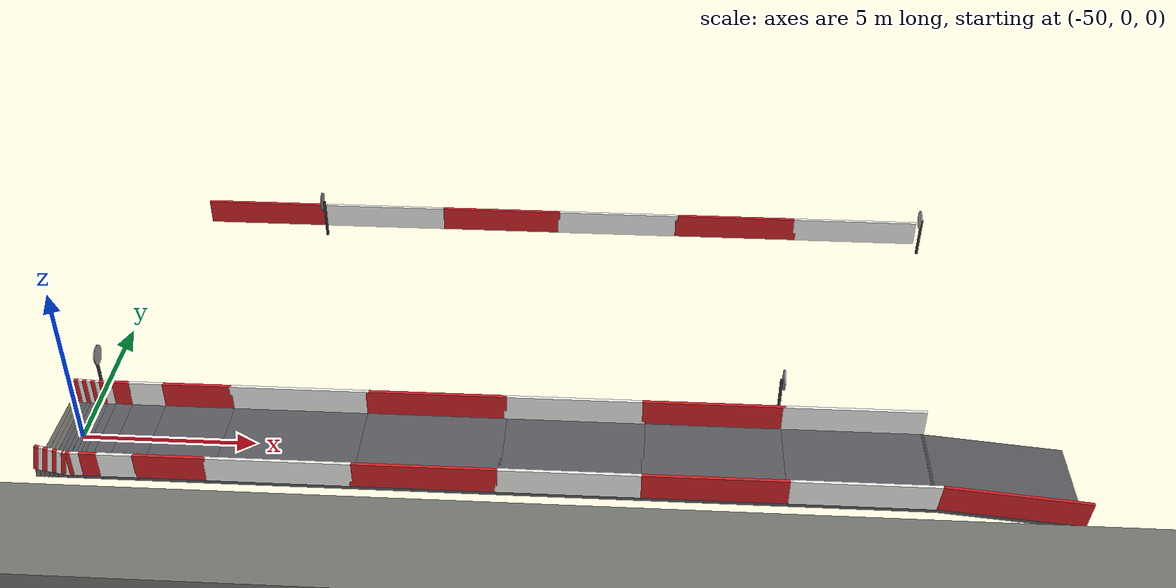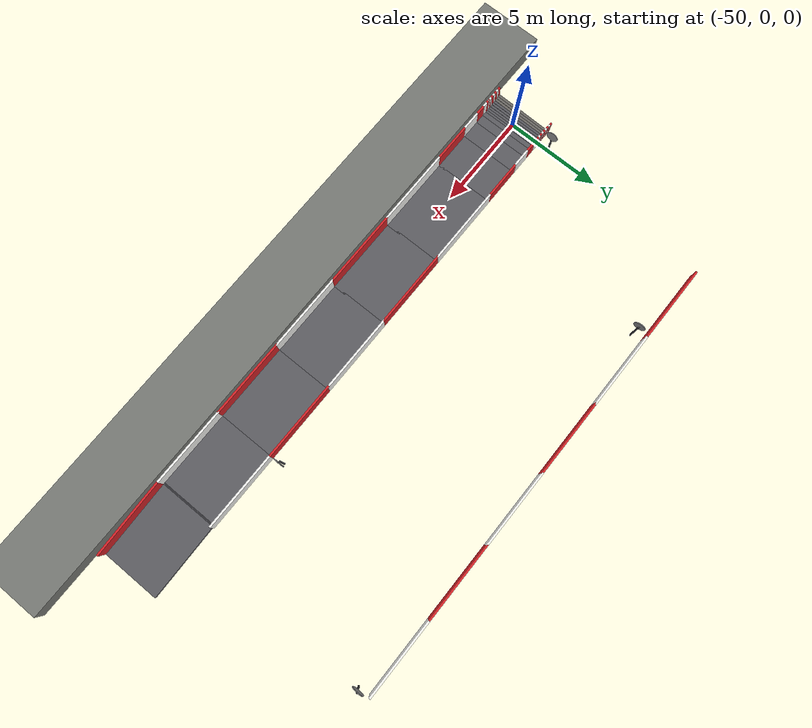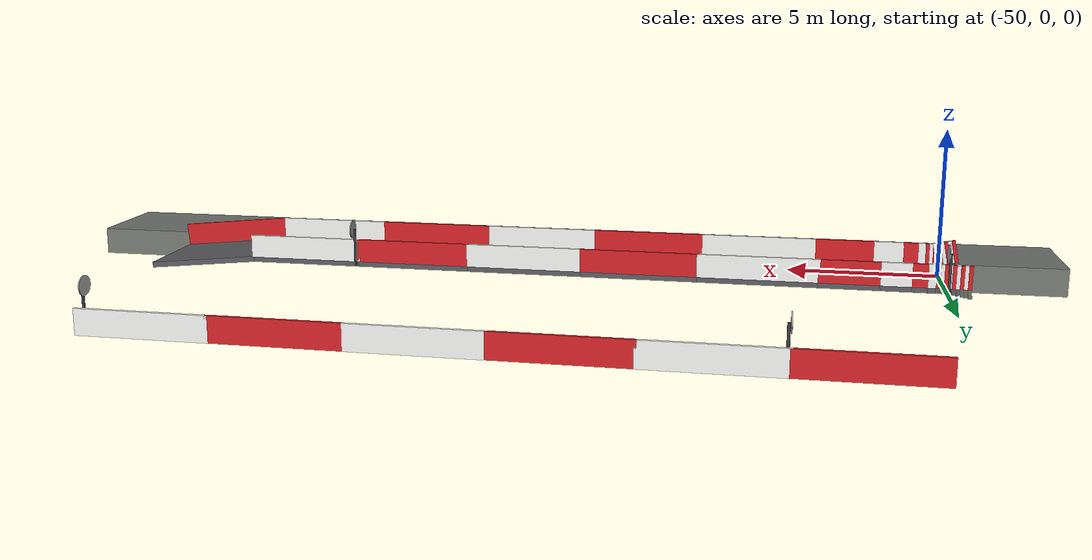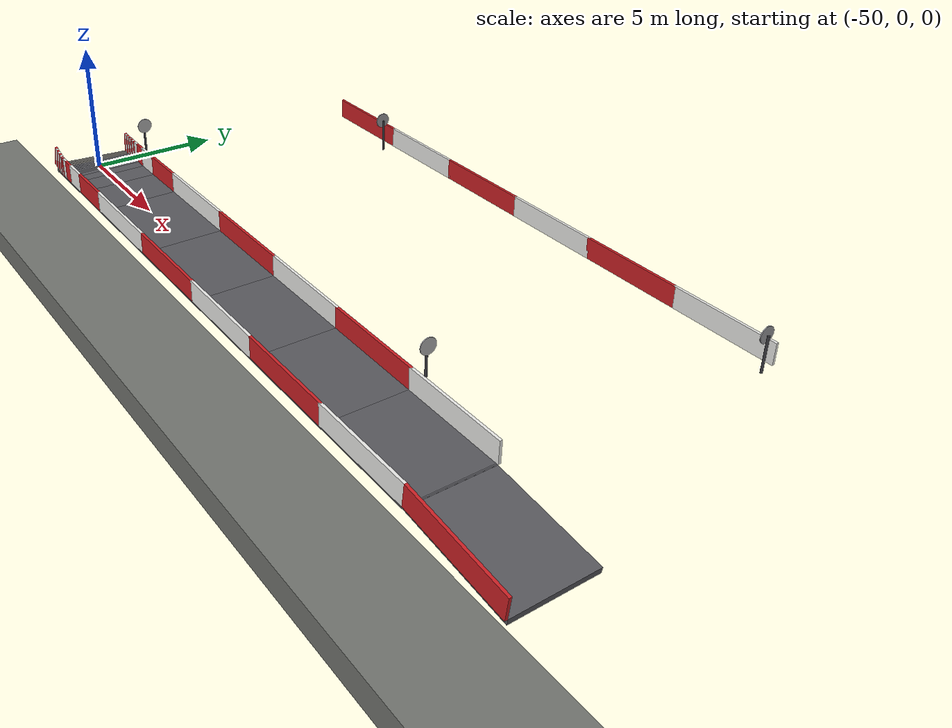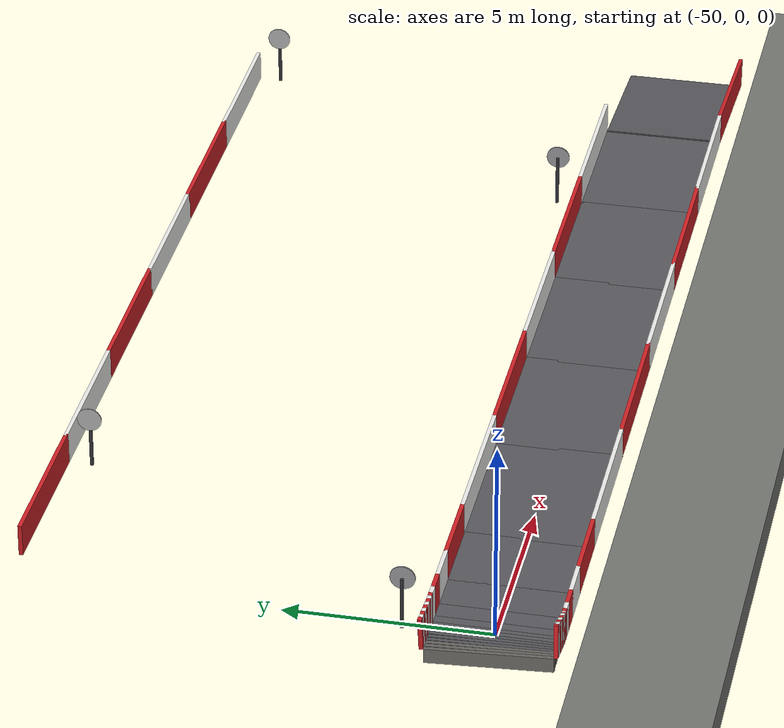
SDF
<sdf version="1.10">
 <world name="ika_parkur">
  <model name="ground_south">
   <static>true</static>
   <pose>-35 -9.285 -0.52 0 0 0</pose>
   <link name="ground_south_link">
    <collision name="ground_south_link_collision">
     <geometry><box><size>116.199336 14.63 1</size></box></geometry>
     <surface>
      <friction><ode><mu>1</mu><mu2>1</mu2></ode></friction>
      <contact><ode><kp>1000000</kp><kd>1</kd></ode></contact>
     </surface>
    </collision>
    <visual name="ground_south_link_visual">
     <geometry><box><size>116.199336 14.63 1</size></box></geometry>
     <material>
      <ambient>0.45 0.46 0.44 1</ambient>
      <diffuse>0.45 0.46 0.44 1</diffuse>
      <specular>0.1 0.1 0.1 1</specular>
     </material>
    </visual>
   </link>
  </model>
  <model name="parkur_road">
   <static>true</static>
   <link name="road_0006">
    <pose>-24.00995 0 -0.299504 0 -0.099669 3.141593</pose>
    <collision name="road_0006_col">
     <geometry><box><size>4.100349 3 0.2</size></box></geometry>
     <surface>
      <friction><ode><mu>1</mu><mu2>1</mu2></ode></friction>
      <contact><ode><kp>1000000</kp><kd>1</kd></ode></contact>
     </surface>
    </collision>
    <visual name="road_0006_vis">
     <geometry><box><size>4.100349 3 0.2</size></box></geometry>
     <material>
      <ambient>0.35 0.35 0.37 1</ambient>
      <diffuse>0.35 0.35 0.37 1</diffuse>
      <specular>0.1 0.1 0.1 1</specular>
     </material>
    </visual>
   </link>
   <link name="road_0007">
    <pose>-28 0 -0.1 0 0 3.141593</pose>
    <collision name="road_0007_col">
     <geometry><box><size>4.08 3 0.2</size></box></geometry>
     <surface>
      <friction><ode><mu>1</mu><mu2>1</mu2></ode></friction>
      <contact><ode><kp>1000000</kp><kd>1</kd></ode></contact>
     </surface>
    </collision>
    <visual name="road_0007_vis">
     <geometry><box><size>4.08 3 0.2</size></box></geometry>
     <material>
      <ambient>0.35 0.35 0.37 1</ambient>
      <diffuse>0.35 0.35 0.37 1</diffuse>
      <specular>0.1 0.1 0.1 1</specular>
     </material>
    </visual>
   </link>
   <link name="road_0008">
    <pose>-32 0 -0.1 0 0 3.141593</pose>
    <collision name="road_0008_col">
     <geometry><box><size>4.08 3 0.2</size></box></geometry>
     <surface>
      <friction><ode><mu>1</mu><mu2>1</mu2></ode></friction>
      <contact><ode><kp>1000000</kp><kd>1</kd></ode></contact>
     </surface>
    </collision>
    <visual name="road_0008_vis">
     <geometry><box><size>4.08 3 0.2</size></box></geometry>
     <material>
      <ambient>0.35 0.35 0.37 1</ambient>
      <diffuse>0.35 0.35 0.37 1</diffuse>
      <specular>0.1 0.1 0.1 1</specular>
     </material>
    </visual>
   </link>
   <link name="road_0009">
    <pose>-36 0 -0.1 0 0 3.141593</pose>
    <collision name="road_0009_col">
     <geometry><box><size>4.08 3 0.2</size></box></geometry>
     <surface>
      <friction><ode><mu>1</mu><mu2>1</mu2></ode></friction>
      <contact><ode><kp>1000000</kp><kd>1</kd></ode></contact>
     </surface>
    </collision>
    <visual name="road_0009_vis">
     <geometry><box><size>4.08 3 0.2</size></box></geometry>
     <material>
      <ambient>0.35 0.35 0.37 1</ambient>
      <diffuse>0.35 0.35 0.37 1</diffuse>
      <specular>0.1 0.1 0.1 1</specular>
     </material>
    </visual>
   </link>
   <link name="road_0010">
    <pose>-40 0 -0.1 0 0 3.141593</pose>
    <collision name="road_0010_col">
     <geometry><box><size>4.08 3 0.2</size></box></geometry>
     <surface>
      <friction><ode><mu>1</mu><mu2>1</mu2></ode></friction>
      <contact><ode><kp>1000000</kp><kd>1</kd></ode></contact>
     </surface>
    </collision>
    <visual name="road_0010_vis">
     <geometry><box><size>4.08 3 0.2</size></box></geometry>
     <material>
      <ambient>0.35 0.35 0.37 1</ambient>
      <diffuse>0.35 0.35 0.37 1</diffuse>
      <specular>0.1 0.1 0.1 1</specular>
     </material>
    </visual>
   </link>
   <link name="road_0011">
    <pose>-44 0 -0.1 0 0 3.141593</pose>
    <collision name="road_0011_col">
     <geometry><box><size>4.08 3 0.2</size></box></geometry>
     <surface>
      <friction><ode><mu>1</mu><mu2>1</mu2></ode></friction>
      <contact><ode><kp>1000000</kp><kd>1</kd></ode></contact>
     </surface>
    </collision>
    <visual name="road_0011_vis">
     <geometry><box><size>4.08 3 0.2</size></box></geometry>
     <material>
      <ambient>0.35 0.35 0.37 1</ambient>
      <diffuse>0.35 0.35 0.37 1</diffuse>
      <specular>0.1 0.1 0.1 1</specular>
     </material>
    </visual>
   </link>
   <link name="road_0012">
    <pose>-47 0 -0.1 0 0 3.141593</pose>
    <collision name="road_0012_col">
     <geometry><box><size>2.04 3 0.2</size></box></geometry>
     <surface>
      <friction><ode><mu>1</mu><mu2>1</mu2></ode></friction>
      <contact><ode><kp>1000000</kp><kd>1</kd></ode></contact>
     </surface>
    </collision>
    <visual name="road_0012_vis">
     <geometry><box><size>2.04 3 0.2</size></box></geometry>
     <material>
      <ambient>0.35 0.35 0.37 1</ambient>
      <diffuse>0.35 0.35 0.37 1</diffuse>
      <specular>0.1 0.1 0.1 1</specular>
     </material>
    </visual>
   </link>
   <link name="road_0013">
    <pose>-48.5 0 -0.1 0 0 3.141593</pose>
    <collision name="road_0013_col">
     <geometry><box><size>1.02 3 0.2</size></box></geometry>
     <surface>
      <friction><ode><mu>1</mu><mu2>1</mu2></ode></friction>
      <contact><ode><kp>1000000</kp><kd>1</kd></ode></contact>
     </surface>
    </collision>
    <visual name="road_0013_vis">
     <geometry><box><size>1.02 3 0.2</size></box></geometry>
     <material>
      <ambient>0.35 0.35 0.37 1</ambient>
      <diffuse>0.35 0.35 0.37 1</diffuse>
      <specular>0.1 0.1 0.1 1</specular>
     </material>
    </visual>
   </link>
   <link name="road_0014">
    <pose>-49.25 0 -0.1 0 0 3.141593</pose>
    <collision name="road_0014_col">
     <geometry><box><size>0.51 3 0.2</size></box></geometry>
     <surface>
      <friction><ode><mu>1</mu><mu2>1</mu2></ode></friction>
      <contact><ode><kp>1000000</kp><kd>1</kd></ode></contact>
     </surface>
    </collision>
    <visual name="road_0014_vis">
     <geometry><box><size>0.51 3 0.2</size></box></geometry>
     <material>
      <ambient>0.35 0.35 0.37 1</ambient>
      <diffuse>0.35 0.35 0.37 1</diffuse>
      <specular>0.1 0.1 0.1 1</specular>
     </material>
    </visual>
   </link>
   <link name="road_0015">
    <pose>-49.625 0 -0.1 0 0 3.141593</pose>
    <collision name="road_0015_col">
     <geometry><box><size>0.255 3 0.2</size></box></geometry>
     <surface>
      <friction><ode><mu>1</mu><mu2>1</mu2></ode></friction>
      <contact><ode><kp>1000000</kp><kd>1</kd></ode></contact>
     </surface>
    </collision>
    <visual name="road_0015_vis">
     <geometry><box><size>0.255 3 0.2</size></box></geometry>
     <material>
      <ambient>0.35 0.35 0.37 1</ambient>
      <diffuse>0.35 0.35 0.37 1</diffuse>
      <specular>0.1 0.1 0.1 1</specular>
     </material>
    </visual>
   </link>
   <link name="road_0016">
    <pose>-49.8125 0 -0.1 0 0 3.141593</pose>
    <collision name="road_0016_col">
     <geometry><box><size>0.1275 3 0.2</size></box></geometry>
     <surface>
      <friction><ode><mu>1</mu><mu2>1</mu2></ode></friction>
      <contact><ode><kp>1000000</kp><kd>1</kd></ode></contact>
     </surface>
    </collision>
    <visual name="road_0016_vis">
     <geometry><box><size>0.1275 3 0.2</size></box></geometry>
     <material>
      <ambient>0.35 0.35 0.37 1</ambient>
      <diffuse>0.35 0.35 0.37 1</diffuse>
      <specular>0.1 0.1 0.1 1</specular>
     </material>
    </visual>
   </link>
   <link name="road_0017">
    <pose>-49.9375 0 -0.1 0 0 3.141593</pose>
    <collision name="road_0017_col">
     <geometry><box><size>0.1275 3 0.2</size></box></geometry>
     <surface>
      <friction><ode><mu>1</mu><mu2>1</mu2></ode></friction>
      <contact><ode><kp>1000000</kp><kd>1</kd></ode></contact>
     </surface>
    </collision>
    <visual name="road_0017_vis">
     <geometry><box><size>0.1275 3 0.2</size></box></geometry>
     <material>
      <ambient>0.35 0.35 0.37 1</ambient>
      <diffuse>0.35 0.35 0.37 1</diffuse>
      <specular>0.1 0.1 0.1 1</specular>
     </material>
    </visual>
   </link>
   <link name="road_0018">
    <pose>-50.072259 0 -0.093394 0 -0.097746 3.141593</pose>
    <collision name="road_0018_col">
     <geometry><box><size>0.128112 3 0.2</size></box></geometry>
     <surface>
      <friction><ode><mu>1</mu><mu2>1</mu2></ode></friction>
      <contact><ode><kp>1000000</kp><kd>1</kd></ode></contact>
     </surface>
    </collision>
    <visual name="road_0018_vis">
     <geometry><box><size>0.128112 3 0.2</size></box></geometry>
     <material>
      <ambient>0.35 0.35 0.37 1</ambient>
      <diffuse>0.35 0.35 0.37 1</diffuse>
      <specular>0.1 0.1 0.1 1</specular>
     </material>
    </visual>
   </link>
   <link name="road_0019">
    <pose>-50.198463 -0.000924 -0.093411 0.008225 -0.097746 3.141593</pose>
    <collision name="road_0019_col">
     <geometry><box><size>0.128112 3 0.224674</size></box></geometry>
     <surface>
      <friction><ode><mu>1</mu><mu2>1</mu2></ode></friction>
      <contact><ode><kp>1000000</kp><kd>1</kd></ode></contact>
     </surface>
    </collision>
    <visual name="road_0019_vis">
     <geometry><box><size>0.128112 3 0.224674</size></box></geometry>
     <material>
      <ambient>0.35 0.35 0.37 1</ambient>
      <diffuse>0.35 0.35 0.37 1</diffuse>
      <specular>0.1 0.1 0.1 1</specular>
     </material>
    </visual>
   </link>
   <link name="road_0020">
    <pose>-50.324665 -0.002051 -0.093418 0.01645 -0.097746 3.141593</pose>
    <collision name="road_0020_col">
     <geometry><box><size>0.128112 3 0.249347</size></box></geometry>
     <surface>
      <friction><ode><mu>1</mu><mu2>1</mu2></ode></friction>
      <contact><ode><kp>1000000</kp><kd>1</kd></ode></contact>
     </surface>
    </collision>
    <visual name="road_0020_vis">
     <geometry><box><size>0.128112 3 0.249347</size></box></geometry>
     <material>
      <ambient>0.35 0.35 0.37 1</ambient>
      <diffuse>0.35 0.35 0.37 1</diffuse>
      <specular>0.1 0.1 0.1 1</specular>
     </material>
    </visual>
   </link>
   <link name="road_0021">
    <pose>-50.450867 -0.00338 -0.093412 0.024674 -0.097746 3.141593</pose>
    <collision name="road_0021_col">
     <geometry><box><size>0.128112 3 0.274016</size></box></geometry>
     <surface>
      <friction><ode><mu>1</mu><mu2>1</mu2></ode></friction>
      <contact><ode><kp>1000000</kp><kd>1</kd></ode></contact>
     </surface>
    </collision>
    <visual name="road_0021_vis">
     <geometry><box><size>0.128112 3 0.274016</size></box></geometry>
     <material>
      <ambient>0.35 0.35 0.37 1</ambient>
      <diffuse>0.35 0.35 0.37 1</diffuse>
      <specular>0.1 0.1 0.1 1</specular>
     </material>
    </visual>
   </link>
   <link name="road_0022">
    <pose>-50.577066 -0.004912 -0.093389 0.032899 -0.097746 3.141593</pose>
    <collision name="road_0022_col">
     <geometry><box><size>0.128112 3 0.29868</size></box></geometry>
     <surface>
      <friction><ode><mu>1</mu><mu2>1</mu2></ode></friction>
      <contact><ode><kp>1000000</kp><kd>1</kd></ode></contact>
     </surface>
    </collision>
    <visual name="road_0022_vis">
     <geometry><box><size>0.128112 3 0.29868</size></box></geometry>
     <material>
      <ambient>0.42 0.41 0.39 1</ambient>
      <diffuse>0.42 0.41 0.39 1</diffuse>
      <specular>0.1 0.1 0.1 1</specular>
     </material>
    </visual>
   </link>
   <link name="road_0023">
    <pose>-50.703264 -0.006647 -0.093346 0.041124 -0.097746 3.141593</pose>
    <collision name="road_0023_col">
     <geometry><box><size>0.128112 3 0.323337</size></box></geometry>
     <surface>
      <friction><ode><mu>1</mu><mu2>1</mu2></ode></friction>
      <contact><ode><kp>1000000</kp><kd>1</kd></ode></contact>
     </surface>
    </collision>
    <visual name="road_0023_vis">
     <geometry><box><size>0.128112 3 0.323337</size></box></geometry>
     <material>
      <ambient>0.42 0.41 0.39 1</ambient>
      <diffuse>0.42 0.41 0.39 1</diffuse>
      <specular>0.1 0.1 0.1 1</specular>
     </material>
    </visual>
   </link>
   <link name="road_0024">
    <pose>-50.829459 -0.008583 -0.09328 0.049349 -0.097746 3.141593</pose>
    <collision name="road_0024_col">
     <geometry><box><size>0.128112 3 0.347987</size></box></geometry>
     <surface>
      <friction><ode><mu>1</mu><mu2>1</mu2></ode></friction>
      <contact><ode><kp>1000000</kp><kd>1</kd></ode></contact>
     </surface>
    </collision>
    <visual name="road_0024_vis">
     <geometry><box><size>0.128112 3 0.347987</size></box></geometry>
     <material>
      <ambient>0.42 0.41 0.39 1</ambient>
      <diffuse>0.42 0.41 0.39 1</diffuse>
      <specular>0.1 0.1 0.1 1</specular>
     </material>
    </visual>
   </link>
  </model>
  <model name="parkur_barriers">
   <static>true</static>
   <link name="barrier_l_0006">
    <pose>-23.960199 -1.55 0.198015 0 -0.099669 3.141593</pose>
    <collision name="barrier_l_0006_col">
     <geometry><box><size>4.100349 0.1 0.8</size></box></geometry>
     <surface>
      <friction><ode><mu>0.6</mu><mu2>0.6</mu2></ode></friction>
      <contact><ode><kp>1000000</kp><kd>1</kd></ode></contact>
     </surface>
    </collision>
    <visual name="barrier_l_0006_vis">
     <geometry><box><size>4.100349 0.1 0.8</size></box></geometry>
     <material>
      <ambient>0.81 0.13 0.15 1</ambient>
      <diffuse>0.81 0.13 0.15 1</diffuse>
      <specular>0.1 0.1 0.1 1</specular>
     </material>
    </visual>
   </link>
   <link name="barrier_l_0007">
    <pose>-28 -1.55 0.4 0 0 3.141593</pose>
    <collision name="barrier_l_0007_col">
     <geometry><box><size>4.08 0.1 0.8</size></box></geometry>
     <surface>
      <friction><ode><mu>0.6</mu><mu2>0.6</mu2></ode></friction>
      <contact><ode><kp>1000000</kp><kd>1</kd></ode></contact>
     </surface>
    </collision>
    <visual name="barrier_l_0007_vis">
     <geometry><box><size>4.08 0.1 0.8</size></box></geometry>
     <material>
      <ambient>0.93 0.93 0.92 1</ambient>
      <diffuse>0.93 0.93 0.92 1</diffuse>
      <specular>0.1 0.1 0.1 1</specular>
     </material>
    </visual>
   </link>
   <link name="barrier_r_0007">
    <pose>-28 1.55 0.4 0 0 3.141593</pose>
    <collision name="barrier_r_0007_col">
     <geometry><box><size>4.08 0.1 0.8</size></box></geometry>
     <surface>
      <friction><ode><mu>0.6</mu><mu2>0.6</mu2></ode></friction>
      <contact><ode><kp>1000000</kp><kd>1</kd></ode></contact>
     </surface>
    </collision>
    <visual name="barrier_r_0007_vis">
     <geometry><box><size>4.08 0.1 0.8</size></box></geometry>
     <material>
      <ambient>0.93 0.93 0.92 1</ambient>
      <diffuse>0.93 0.93 0.92 1</diffuse>
      <specular>0.1 0.1 0.1 1</specular>
     </material>
    </visual>
   </link>
   <link name="barrier_l_0008">
    <pose>-32 -1.55 0.4 0 0 3.141593</pose>
    <collision name="barrier_l_0008_col">
     <geometry><box><size>4.08 0.1 0.8</size></box></geometry>
     <surface>
      <friction><ode><mu>0.6</mu><mu2>0.6</mu2></ode></friction>
      <contact><ode><kp>1000000</kp><kd>1</kd></ode></contact>
     </surface>
    </collision>
    <visual name="barrier_l_0008_vis">
     <geometry><box><size>4.08 0.1 0.8</size></box></geometry>
     <material>
      <ambient>0.81 0.13 0.15 1</ambient>
      <diffuse>0.81 0.13 0.15 1</diffuse>
      <specular>0.1 0.1 0.1 1</specular>
     </material>
    </visual>
   </link>
   <link name="barrier_r_0008">
    <pose>-32 1.55 0.4 0 0 3.141593</pose>
    <collision name="barrier_r_0008_col">
     <geometry><box><size>4.08 0.1 0.8</size></box></geometry>
     <surface>
      <friction><ode><mu>0.6</mu><mu2>0.6</mu2></ode></friction>
      <contact><ode><kp>1000000</kp><kd>1</kd></ode></contact>
     </surface>
    </collision>
    <visual name="barrier_r_0008_vis">
     <geometry><box><size>4.08 0.1 0.8</size></box></geometry>
     <material>
      <ambient>0.81 0.13 0.15 1</ambient>
      <diffuse>0.81 0.13 0.15 1</diffuse>
      <specular>0.1 0.1 0.1 1</specular>
     </material>
    </visual>
   </link>
   <link name="barrier_l_0009">
    <pose>-36 -1.55 0.4 0 0 3.141593</pose>
    <collision name="barrier_l_0009_col">
     <geometry><box><size>4.08 0.1 0.8</size></box></geometry>
     <surface>
      <friction><ode><mu>0.6</mu><mu2>0.6</mu2></ode></friction>
      <contact><ode><kp>1000000</kp><kd>1</kd></ode></contact>
     </surface>
    </collision>
    <visual name="barrier_l_0009_vis">
     <geometry><box><size>4.08 0.1 0.8</size></box></geometry>
     <material>
      <ambient>0.93 0.93 0.92 1</ambient>
      <diffuse>0.93 0.93 0.92 1</diffuse>
      <specular>0.1 0.1 0.1 1</specular>
     </material>
    </visual>
   </link>
   <link name="barrier_r_0009">
    <pose>-36 1.55 0.4 0 0 3.141593</pose>
    <collision name="barrier_r_0009_col">
     <geometry><box><size>4.08 0.1 0.8</size></box></geometry>
     <surface>
      <friction><ode><mu>0.6</mu><mu2>0.6</mu2></ode></friction>
      <contact><ode><kp>1000000</kp><kd>1</kd></ode></contact>
     </surface>
    </collision>
    <visual name="barrier_r_0009_vis">
     <geometry><box><size>4.08 0.1 0.8</size></box></geometry>
     <material>
      <ambient>0.93 0.93 0.92 1</ambient>
      <diffuse>0.93 0.93 0.92 1</diffuse>
      <specular>0.1 0.1 0.1 1</specular>
     </material>
    </visual>
   </link>
   <link name="barrier_l_0010">
    <pose>-40 -1.55 0.4 0 0 3.141593</pose>
    <collision name="barrier_l_0010_col">
     <geometry><box><size>4.08 0.1 0.8</size></box></geometry>
     <surface>
      <friction><ode><mu>0.6</mu><mu2>0.6</mu2></ode></friction>
      <contact><ode><kp>1000000</kp><kd>1</kd></ode></contact>
     </surface>
    </collision>
    <visual name="barrier_l_0010_vis">
     <geometry><box><size>4.08 0.1 0.8</size></box></geometry>
     <material>
      <ambient>0.81 0.13 0.15 1</ambient>
      <diffuse>0.81 0.13 0.15 1</diffuse>
      <specular>0.1 0.1 0.1 1</specular>
     </material>
    </visual>
   </link>
   <link name="barrier_r_0010">
    <pose>-40 1.55 0.4 0 0 3.141593</pose>
    <collision name="barrier_r_0010_col">
     <geometry><box><size>4.08 0.1 0.8</size></box></geometry>
     <surface>
      <friction><ode><mu>0.6</mu><mu2>0.6</mu2></ode></friction>
      <contact><ode><kp>1000000</kp><kd>1</kd></ode></contact>
     </surface>
    </collision>
    <visual name="barrier_r_0010_vis">
     <geometry><box><size>4.08 0.1 0.8</size></box></geometry>
     <material>
      <ambient>0.81 0.13 0.15 1</ambient>
      <diffuse>0.81 0.13 0.15 1</diffuse>
      <specular>0.1 0.1 0.1 1</specular>
     </material>
    </visual>
   </link>
   <link name="barrier_l_0011">
    <pose>-44 -1.55 0.4 0 0 3.141593</pose>
    <collision name="barrier_l_0011_col">
     <geometry><box><size>4.08 0.1 0.8</size></box></geometry>
     <surface>
      <friction><ode><mu>0.6</mu><mu2>0.6</mu2></ode></friction>
      <contact><ode><kp>1000000</kp><kd>1</kd></ode></contact>
     </surface>
    </collision>
    <visual name="barrier_l_0011_vis">
     <geometry><box><size>4.08 0.1 0.8</size></box></geometry>
     <material>
      <ambient>0.93 0.93 0.92 1</ambient>
      <diffuse>0.93 0.93 0.92 1</diffuse>
      <specular>0.1 0.1 0.1 1</specular>
     </material>
    </visual>
   </link>
   <link name="barrier_r_0011">
    <pose>-44 1.55 0.4 0 0 3.141593</pose>
    <collision name="barrier_r_0011_col">
     <geometry><box><size>4.08 0.1 0.8</size></box></geometry>
     <surface>
      <friction><ode><mu>0.6</mu><mu2>0.6</mu2></ode></friction>
      <contact><ode><kp>1000000</kp><kd>1</kd></ode></contact>
     </surface>
    </collision>
    <visual name="barrier_r_0011_vis">
     <geometry><box><size>4.08 0.1 0.8</size></box></geometry>
     <material>
      <ambient>0.93 0.93 0.92 1</ambient>
      <diffuse>0.93 0.93 0.92 1</diffuse>
      <specular>0.1 0.1 0.1 1</specular>
     </material>
    </visual>
   </link>
   <link name="barrier_l_0012">
    <pose>-47 -1.55 0.4 0 0 3.141593</pose>
    <collision name="barrier_l_0012_col">
     <geometry><box><size>2.04 0.1 0.8</size></box></geometry>
     <surface>
      <friction><ode><mu>0.6</mu><mu2>0.6</mu2></ode></friction>
      <contact><ode><kp>1000000</kp><kd>1</kd></ode></contact>
     </surface>
    </collision>
    <visual name="barrier_l_0012_vis">
     <geometry><box><size>2.04 0.1 0.8</size></box></geometry>
     <material>
      <ambient>0.81 0.13 0.15 1</ambient>
      <diffuse>0.81 0.13 0.15 1</diffuse>
      <specular>0.1 0.1 0.1 1</specular>
     </material>
    </visual>
   </link>
   <link name="barrier_r_0012">
    <pose>-47 1.55 0.4 0 0 3.141593</pose>
    <collision name="barrier_r_0012_col">
     <geometry><box><size>2.04 0.1 0.8</size></box></geometry>
     <surface>
      <friction><ode><mu>0.6</mu><mu2>0.6</mu2></ode></friction>
      <contact><ode><kp>1000000</kp><kd>1</kd></ode></contact>
     </surface>
    </collision>
    <visual name="barrier_r_0012_vis">
     <geometry><box><size>2.04 0.1 0.8</size></box></geometry>
     <material>
      <ambient>0.81 0.13 0.15 1</ambient>
      <diffuse>0.81 0.13 0.15 1</diffuse>
      <specular>0.1 0.1 0.1 1</specular>
     </material>
    </visual>
   </link>
   <link name="barrier_l_0013">
    <pose>-48.5 -1.55 0.4 0 0 3.141593</pose>
    <collision name="barrier_l_0013_col">
     <geometry><box><size>1.02 0.1 0.8</size></box></geometry>
     <surface>
      <friction><ode><mu>0.6</mu><mu2>0.6</mu2></ode></friction>
      <contact><ode><kp>1000000</kp><kd>1</kd></ode></contact>
     </surface>
    </collision>
    <visual name="barrier_l_0013_vis">
     <geometry><box><size>1.02 0.1 0.8</size></box></geometry>
     <material>
      <ambient>0.93 0.93 0.92 1</ambient>
      <diffuse>0.93 0.93 0.92 1</diffuse>
      <specular>0.1 0.1 0.1 1</specular>
     </material>
    </visual>
   </link>
   <link name="barrier_r_0013">
    <pose>-48.5 1.55 0.4 0 0 3.141593</pose>
    <collision name="barrier_r_0013_col">
     <geometry><box><size>1.02 0.1 0.8</size></box></geometry>
     <surface>
      <friction><ode><mu>0.6</mu><mu2>0.6</mu2></ode></friction>
      <contact><ode><kp>1000000</kp><kd>1</kd></ode></contact>
     </surface>
    </collision>
    <visual name="barrier_r_0013_vis">
     <geometry><box><size>1.02 0.1 0.8</size></box></geometry>
     <material>
      <ambient>0.93 0.93 0.92 1</ambient>
      <diffuse>0.93 0.93 0.92 1</diffuse>
      <specular>0.1 0.1 0.1 1</specular>
     </material>
    </visual>
   </link>
   <link name="barrier_l_0014">
    <pose>-49.25 -1.55 0.4 0 0 3.141593</pose>
    <collision name="barrier_l_0014_col">
     <geometry><box><size>0.51 0.1 0.8</size></box></geometry>
     <surface>
      <friction><ode><mu>0.6</mu><mu2>0.6</mu2></ode></friction>
      <contact><ode><kp>1000000</kp><kd>1</kd></ode></contact>
     </surface>
    </collision>
    <visual name="barrier_l_0014_vis">
     <geometry><box><size>0.51 0.1 0.8</size></box></geometry>
     <material>
      <ambient>0.81 0.13 0.15 1</ambient>
      <diffuse>0.81 0.13 0.15 1</diffuse>
      <specular>0.1 0.1 0.1 1</specular>
     </material>
    </visual>
   </link>
   <link name="barrier_r_0014">
    <pose>-49.25 1.55 0.4 0 0 3.141593</pose>
    <collision name="barrier_r_0014_col">
     <geometry><box><size>0.51 0.1 0.8</size></box></geometry>
     <surface>
      <friction><ode><mu>0.6</mu><mu2>0.6</mu2></ode></friction>
      <contact><ode><kp>1000000</kp><kd>1</kd></ode></contact>
     </surface>
    </collision>
    <visual name="barrier_r_0014_vis">
     <geometry><box><size>0.51 0.1 0.8</size></box></geometry>
     <material>
      <ambient>0.81 0.13 0.15 1</ambient>
      <diffuse>0.81 0.13 0.15 1</diffuse>
      <specular>0.1 0.1 0.1 1</specular>
     </material>
    </visual>
   </link>
   <link name="barrier_l_0015">
    <pose>-49.625 -1.55 0.4 0 0 3.141593</pose>
    <collision name="barrier_l_0015_col">
     <geometry><box><size>0.255 0.1 0.8</size></box></geometry>
     <surface>
      <friction><ode><mu>0.6</mu><mu2>0.6</mu2></ode></friction>
      <contact><ode><kp>1000000</kp><kd>1</kd></ode></contact>
     </surface>
    </collision>
    <visual name="barrier_l_0015_vis">
     <geometry><box><size>0.255 0.1 0.8</size></box></geometry>
     <material>
      <ambient>0.93 0.93 0.92 1</ambient>
      <diffuse>0.93 0.93 0.92 1</diffuse>
      <specular>0.1 0.1 0.1 1</specular>
     </material>
    </visual>
   </link>
   <link name="barrier_r_0015">
    <pose>-49.625 1.55 0.4 0 0 3.141593</pose>
    <collision name="barrier_r_0015_col">
     <geometry><box><size>0.255 0.1 0.8</size></box></geometry>
     <surface>
      <friction><ode><mu>0.6</mu><mu2>0.6</mu2></ode></friction>
      <contact><ode><kp>1000000</kp><kd>1</kd></ode></contact>
     </surface>
    </collision>
    <visual name="barrier_r_0015_vis">
     <geometry><box><size>0.255 0.1 0.8</size></box></geometry>
     <material>
      <ambient>0.93 0.93 0.92 1</ambient>
      <diffuse>0.93 0.93 0.92 1</diffuse>
      <specular>0.1 0.1 0.1 1</specular>
     </material>
    </visual>
   </link>
   <link name="barrier_l_0016">
    <pose>-49.8125 -1.55 0.4 0 0 3.141593</pose>
    <collision name="barrier_l_0016_col">
     <geometry><box><size>0.1275 0.1 0.8</size></box></geometry>
     <surface>
      <friction><ode><mu>0.6</mu><mu2>0.6</mu2></ode></friction>
      <contact><ode><kp>1000000</kp><kd>1</kd></ode></contact>
     </surface>
    </collision>
    <visual name="barrier_l_0016_vis">
     <geometry><box><size>0.1275 0.1 0.8</size></box></geometry>
     <material>
      <ambient>0.81 0.13 0.15 1</ambient>
      <diffuse>0.81 0.13 0.15 1</diffuse>
      <specular>0.1 0.1 0.1 1</specular>
     </material>
    </visual>
   </link>
   <link name="barrier_r_0016">
    <pose>-49.8125 1.55 0.4 0 0 3.141593</pose>
    <collision name="barrier_r_0016_col">
     <geometry><box><size>0.1275 0.1 0.8</size></box></geometry>
     <surface>
      <friction><ode><mu>0.6</mu><mu2>0.6</mu2></ode></friction>
      <contact><ode><kp>1000000</kp><kd>1</kd></ode></contact>
     </surface>
    </collision>
    <visual name="barrier_r_0016_vis">
     <geometry><box><size>0.1275 0.1 0.8</size></box></geometry>
     <material>
      <ambient>0.81 0.13 0.15 1</ambient>
      <diffuse>0.81 0.13 0.15 1</diffuse>
      <specular>0.1 0.1 0.1 1</specular>
     </material>
    </visual>
   </link>
   <link name="barrier_l_0017">
    <pose>-49.9375 -1.55 0.4 0 0 3.141593</pose>
    <collision name="barrier_l_0017_col">
     <geometry><box><size>0.1275 0.1 0.8</size></box></geometry>
     <surface>
      <friction><ode><mu>0.6</mu><mu2>0.6</mu2></ode></friction>
      <contact><ode><kp>1000000</kp><kd>1</kd></ode></contact>
     </surface>
    </collision>
    <visual name="barrier_l_0017_vis">
     <geometry><box><size>0.1275 0.1 0.8</size></box></geometry>
     <material>
      <ambient>0.93 0.93 0.92 1</ambient>
      <diffuse>0.93 0.93 0.92 1</diffuse>
      <specular>0.1 0.1 0.1 1</specular>
     </material>
    </visual>
   </link>
   <link name="barrier_r_0017">
    <pose>-49.9375 1.55 0.4 0 0 3.141593</pose>
    <collision name="barrier_r_0017_col">
     <geometry><box><size>0.1275 0.1 0.8</size></box></geometry>
     <surface>
      <friction><ode><mu>0.6</mu><mu2>0.6</mu2></ode></friction>
      <contact><ode><kp>1000000</kp><kd>1</kd></ode></contact>
     </surface>
    </collision>
    <visual name="barrier_r_0017_vis">
     <geometry><box><size>0.1275 0.1 0.8</size></box></geometry>
     <material>
      <ambient>0.93 0.93 0.92 1</ambient>
      <diffuse>0.93 0.93 0.92 1</diffuse>
      <specular>0.1 0.1 0.1 1</specular>
     </material>
    </visual>
   </link>
   <link name="barrier_l_0018">
    <pose>-49.984037 -1.550007 0.404732 0 -0.197438 3.141173</pose>
    <collision name="barrier_l_0018_col">
     <geometry><box><size>0.130026 0.1 0.8</size></box></geometry>
     <surface>
      <friction><ode><mu>0.6</mu><mu2>0.6</mu2></ode></friction>
      <contact><ode><kp>1000000</kp><kd>1</kd></ode></contact>
     </surface>
    </collision>
    <visual name="barrier_l_0018_vis">
     <geometry><box><size>0.130026 0.1 0.8</size></box></geometry>
     <material>
      <ambient>0.81 0.13 0.15 1</ambient>
      <diffuse>0.81 0.13 0.15 1</diffuse>
      <specular>0.1 0.1 0.1 1</specular>
     </material>
    </visual>
   </link>
   <link name="barrier_r_0018">
    <pose>-50.064071 1.549973 0.399751 0 0.003928 -3.141173</pose>
    <collision name="barrier_r_0018_col">
     <geometry><box><size>0.127501 0.1 0.8</size></box></geometry>
     <surface>
      <friction><ode><mu>0.6</mu><mu2>0.6</mu2></ode></friction>
      <contact><ode><kp>1000000</kp><kd>1</kd></ode></contact>
     </surface>
    </collision>
    <visual name="barrier_r_0018_vis">
     <geometry><box><size>0.127501 0.1 0.8</size></box></geometry>
     <material>
      <ambient>0.81 0.13 0.15 1</ambient>
      <diffuse>0.81 0.13 0.15 1</diffuse>
      <specular>0.1 0.1 0.1 1</specular>
     </material>
    </visual>
   </link>
   <link name="barrier_l_0019">
    <pose>-50.109038 -1.546678 0.429724 0.008225 -0.197432 3.140334</pose>
    <collision name="barrier_l_0019_col">
     <geometry><box><size>0.130026 0.1 0.8</size></box></geometry>
     <surface>
      <friction><ode><mu>0.6</mu><mu2>0.6</mu2></ode></friction>
      <contact><ode><kp>1000000</kp><kd>1</kd></ode></contact>
     </surface>
    </collision>
    <visual name="barrier_l_0019_vis">
     <geometry><box><size>0.130026 0.1 0.8</size></box></geometry>
     <material>
      <ambient>0.93 0.93 0.92 1</ambient>
      <diffuse>0.93 0.93 0.92 1</diffuse>
      <specular>0.1 0.1 0.1 1</specular>
     </material>
    </visual>
   </link>
   <link name="barrier_r_0019">
    <pose>-50.189073 1.553157 0.399247 0.008225 0.003922 -3.140334</pose>
    <collision name="barrier_r_0019_col">
     <geometry><box><size>0.127501 0.1 0.8</size></box></geometry>
     <surface>
      <friction><ode><mu>0.6</mu><mu2>0.6</mu2></ode></friction>
      <contact><ode><kp>1000000</kp><kd>1</kd></ode></contact>
     </surface>
    </collision>
    <visual name="barrier_r_0019_vis">
     <geometry><box><size>0.127501 0.1 0.8</size></box></geometry>
     <material>
      <ambient>0.93 0.93 0.92 1</ambient>
      <diffuse>0.93 0.93 0.92 1</diffuse>
      <specular>0.1 0.1 0.1 1</specular>
     </material>
    </visual>
   </link>
   <link name="barrier_l_0020">
    <pose>-50.234042 -1.543244 0.454689 0.01645 -0.197418 3.139496</pose>
    <collision name="barrier_l_0020_col">
     <geometry><box><size>0.130026 0.1 0.8</size></box></geometry>
     <surface>
      <friction><ode><mu>0.6</mu><mu2>0.6</mu2></ode></friction>
      <contact><ode><kp>1000000</kp><kd>1</kd></ode></contact>
     </surface>
    </collision>
    <visual name="barrier_l_0020_vis">
     <geometry><box><size>0.130026 0.1 0.8</size></box></geometry>
     <material>
      <ambient>0.81 0.13 0.15 1</ambient>
      <diffuse>0.81 0.13 0.15 1</diffuse>
      <specular>0.1 0.1 0.1 1</specular>
     </material>
    </visual>
   </link>
   <link name="barrier_r_0020">
    <pose>-50.314077 1.556236 0.398717 0.01645 0.003908 -3.139496</pose>
    <collision name="barrier_r_0020_col">
     <geometry><box><size>0.127501 0.1 0.8</size></box></geometry>
     <surface>
      <friction><ode><mu>0.6</mu><mu2>0.6</mu2></ode></friction>
      <contact><ode><kp>1000000</kp><kd>1</kd></ode></contact>
     </surface>
    </collision>
    <visual name="barrier_r_0020_vis">
     <geometry><box><size>0.127501 0.1 0.8</size></box></geometry>
     <material>
      <ambient>0.81 0.13 0.15 1</ambient>
      <diffuse>0.81 0.13 0.15 1</diffuse>
      <specular>0.1 0.1 0.1 1</specular>
     </material>
    </visual>
   </link>
   <link name="barrier_l_0021">
    <pose>-50.359048 -1.539706 0.479626 0.024674 -0.197398 3.138657</pose>
    <collision name="barrier_l_0021_col">
     <geometry><box><size>0.130026 0.1 0.8</size></box></geometry>
     <surface>
      <friction><ode><mu>0.6</mu><mu2>0.6</mu2></ode></friction>
      <contact><ode><kp>1000000</kp><kd>1</kd></ode></contact>
     </surface>
    </collision>
    <visual name="barrier_l_0021_vis">
     <geometry><box><size>0.130026 0.1 0.8</size></box></geometry>
     <material>
      <ambient>0.93 0.93 0.92 1</ambient>
      <diffuse>0.93 0.93 0.92 1</diffuse>
      <specular>0.1 0.1 0.1 1</specular>
     </material>
    </visual>
   </link>
   <link name="barrier_r_0021">
    <pose>-50.439083 1.559209 0.398163 0.024674 0.003887 -3.138657</pose>
    <collision name="barrier_r_0021_col">
     <geometry><box><size>0.127502 0.1 0.8</size></box></geometry>
     <surface>
      <friction><ode><mu>0.6</mu><mu2>0.6</mu2></ode></friction>
      <contact><ode><kp>1000000</kp><kd>1</kd></ode></contact>
     </surface>
    </collision>
    <visual name="barrier_r_0021_vis">
     <geometry><box><size>0.127502 0.1 0.8</size></box></geometry>
     <material>
      <ambient>0.93 0.93 0.92 1</ambient>
      <diffuse>0.93 0.93 0.92 1</diffuse>
      <specular>0.1 0.1 0.1 1</specular>
     </material>
    </visual>
   </link>
   <link name="barrier_l_0022">
    <pose>-50.484057 -1.536064 0.504534 0.032899 -0.197371 3.137819</pose>
    <collision name="barrier_l_0022_col">
     <geometry><box><size>0.130025 0.1 0.8</size></box></geometry>
     <surface>
      <friction><ode><mu>0.6</mu><mu2>0.6</mu2></ode></friction>
      <contact><ode><kp>1000000</kp><kd>1</kd></ode></contact>
     </surface>
    </collision>
    <visual name="barrier_l_0022_vis">
     <geometry><box><size>0.130025 0.1 0.8</size></box></geometry>
     <material>
      <ambient>0.81 0.13 0.15 1</ambient>
      <diffuse>0.81 0.13 0.15 1</diffuse>
      <specular>0.1 0.1 0.1 1</specular>
     </material>
    </visual>
   </link>
   <link name="barrier_r_0022">
    <pose>-50.564093 1.562077 0.397584 0.032899 0.003859 -3.137819</pose>
    <collision name="barrier_r_0022_col">
     <geometry><box><size>0.127502 0.1 0.8</size></box></geometry>
     <surface>
      <friction><ode><mu>0.6</mu><mu2>0.6</mu2></ode></friction>
      <contact><ode><kp>1000000</kp><kd>1</kd></ode></contact>
     </surface>
    </collision>
    <visual name="barrier_r_0022_vis">
     <geometry><box><size>0.127502 0.1 0.8</size></box></geometry>
     <material>
      <ambient>0.81 0.13 0.15 1</ambient>
      <diffuse>0.81 0.13 0.15 1</diffuse>
      <specular>0.1 0.1 0.1 1</specular>
     </material>
    </visual>
   </link>
   <link name="barrier_l_0023">
    <pose>-50.609068 -1.532318 0.529412 0.041124 -0.197337 3.136981</pose>
    <collision name="barrier_l_0023_col">
     <geometry><box><size>0.130025 0.1 0.8</size></box></geometry>
     <surface>
      <friction><ode><mu>0.6</mu><mu2>0.6</mu2></ode></friction>
      <contact><ode><kp>1000000</kp><kd>1</kd></ode></contact>
     </surface>
    </collision>
    <visual name="barrier_l_0023_vis">
     <geometry><box><size>0.130025 0.1 0.8</size></box></geometry>
     <material>
      <ambient>0.93 0.93 0.92 1</ambient>
      <diffuse>0.93 0.93 0.92 1</diffuse>
      <specular>0.1 0.1 0.1 1</specular>
     </material>
    </visual>
   </link>
   <link name="barrier_r_0023">
    <pose>-50.689105 1.564839 0.396982 0.041124 0.003825 -3.136981</pose>
    <collision name="barrier_r_0023_col">
     <geometry><box><size>0.127502 0.1 0.8</size></box></geometry>
     <surface>
      <friction><ode><mu>0.6</mu><mu2>0.6</mu2></ode></friction>
      <contact><ode><kp>1000000</kp><kd>1</kd></ode></contact>
     </surface>
    </collision>
    <visual name="barrier_r_0023_vis">
     <geometry><box><size>0.127502 0.1 0.8</size></box></geometry>
     <material>
      <ambient>0.93 0.93 0.92 1</ambient>
      <diffuse>0.93 0.93 0.92 1</diffuse>
      <specular>0.1 0.1 0.1 1</specular>
     </material>
    </visual>
   </link>
   <link name="barrier_l_0024">
    <pose>-50.734082 -1.528468 0.55426 0.049349 -0.197296 3.136143</pose>
    <collision name="barrier_l_0024_col">
     <geometry><box><size>0.130024 0.1 0.8</size></box></geometry>
     <surface>
      <friction><ode><mu>0.6</mu><mu2>0.6</mu2></ode></friction>
      <contact><ode><kp>1000000</kp><kd>1</kd></ode></contact>
     </surface>
    </collision>
    <visual name="barrier_l_0024_vis">
     <geometry><box><size>0.130024 0.1 0.8</size></box></geometry>
     <material>
      <ambient>0.81 0.13 0.15 1</ambient>
      <diffuse>0.81 0.13 0.15 1</diffuse>
      <specular>0.1 0.1 0.1 1</specular>
     </material>
    </visual>
   </link>
   <link name="barrier_r_0024">
    <pose>-50.814119 1.567495 0.396358 0.049349 0.003784 -3.136143</pose>
    <collision name="barrier_r_0024_col">
     <geometry><box><size>0.127503 0.1 0.8</size></box></geometry>
     <surface>
      <friction><ode><mu>0.6</mu><mu2>0.6</mu2></ode></friction>
      <contact><ode><kp>1000000</kp><kd>1</kd></ode></contact>
     </surface>
    </collision>
    <visual name="barrier_r_0024_vis">
     <geometry><box><size>0.127503 0.1 0.8</size></box></geometry>
     <material>
      <ambient>0.81 0.13 0.15 1</ambient>
      <diffuse>0.81 0.13 0.15 1</diffuse>
      <specular>0.1 0.1 0.1 1</specular>
     </material>
    </visual>
   </link>
   <link name="barrier_r_0106">
    <pose>-47 11.45 0.4 0 0 0</pose>
    <collision name="barrier_r_0106_col">
     <geometry><box><size>4.08 0.1 0.8</size></box></geometry>
     <surface>
      <friction><ode><mu>0.6</mu><mu2>0.6</mu2></ode></friction>
      <contact><ode><kp>1000000</kp><kd>1</kd></ode></contact>
     </surface>
    </collision>
    <visual name="barrier_r_0106_vis">
     <geometry><box><size>4.08 0.1 0.8</size></box></geometry>
     <material>
      <ambient>0.81 0.13 0.15 1</ambient>
      <diffuse>0.81 0.13 0.15 1</diffuse>
      <specular>0.1 0.1 0.1 1</specular>
     </material>
    </visual>
   </link>
   <link name="barrier_r_0107">
    <pose>-43 11.45 0.4 0 0 0</pose>
    <collision name="barrier_r_0107_col">
     <geometry><box><size>4.08 0.1 0.8</size></box></geometry>
     <surface>
      <friction><ode><mu>0.6</mu><mu2>0.6</mu2></ode></friction>
      <contact><ode><kp>1000000</kp><kd>1</kd></ode></contact>
     </surface>
    </collision>
    <visual name="barrier_r_0107_vis">
     <geometry><box><size>4.08 0.1 0.8</size></box></geometry>
     <material>
      <ambient>0.93 0.93 0.92 1</ambient>
      <diffuse>0.93 0.93 0.92 1</diffuse>
      <specular>0.1 0.1 0.1 1</specular>
     </material>
    </visual>
   </link>
   <link name="barrier_r_0108">
    <pose>-39 11.45 0.4 0 0 0</pose>
    <collision name="barrier_r_0108_col">
     <geometry><box><size>4.08 0.1 0.8</size></box></geometry>
     <surface>
      <friction><ode><mu>0.6</mu><mu2>0.6</mu2></ode></friction>
      <contact><ode><kp>1000000</kp><kd>1</kd></ode></contact>
     </surface>
    </collision>
    <visual name="barrier_r_0108_vis">
     <geometry><box><size>4.08 0.1 0.8</size></box></geometry>
     <material>
      <ambient>0.81 0.13 0.15 1</ambient>
      <diffuse>0.81 0.13 0.15 1</diffuse>
      <specular>0.1 0.1 0.1 1</specular>
     </material>
    </visual>
   </link>
   <link name="barrier_r_0109">
    <pose>-35 11.45 0.4 0 0 0</pose>
    <collision name="barrier_r_0109_col">
     <geometry><box><size>4.08 0.1 0.8</size></box></geometry>
     <surface>
      <friction><ode><mu>0.6</mu><mu2>0.6</mu2></ode></friction>
      <contact><ode><kp>1000000</kp><kd>1</kd></ode></contact>
     </surface>
    </collision>
    <visual name="barrier_r_0109_vis">
     <geometry><box><size>4.08 0.1 0.8</size></box></geometry>
     <material>
      <ambient>0.93 0.93 0.92 1</ambient>
      <diffuse>0.93 0.93 0.92 1</diffuse>
      <specular>0.1 0.1 0.1 1</specular>
     </material>
    </visual>
   </link>
   <link name="barrier_r_0110">
    <pose>-31 11.45 0.4 0 0 0</pose>
    <collision name="barrier_r_0110_col">
     <geometry><box><size>4.08 0.1 0.8</size></box></geometry>
     <surface>
      <friction><ode><mu>0.6</mu><mu2>0.6</mu2></ode></friction>
      <contact><ode><kp>1000000</kp><kd>1</kd></ode></contact>
     </surface>
    </collision>
    <visual name="barrier_r_0110_vis">
     <geometry><box><size>4.08 0.1 0.8</size></box></geometry>
     <material>
      <ambient>0.81 0.13 0.15 1</ambient>
      <diffuse>0.81 0.13 0.15 1</diffuse>
      <specular>0.1 0.1 0.1 1</specular>
     </material>
    </visual>
   </link>
   <link name="barrier_r_0111">
    <pose>-27 11.45 0.4 0 0 0</pose>
    <collision name="barrier_r_0111_col">
     <geometry><box><size>4.08 0.1 0.8</size></box></geometry>
     <surface>
      <friction><ode><mu>0.6</mu><mu2>0.6</mu2></ode></friction>
      <contact><ode><kp>1000000</kp><kd>1</kd></ode></contact>
     </surface>
    </collision>
    <visual name="barrier_r_0111_vis">
     <geometry><box><size>4.08 0.1 0.8</size></box></geometry>
     <material>
      <ambient>0.93 0.93 0.92 1</ambient>
      <diffuse>0.93 0.93 0.92 1</diffuse>
      <specular>0.1 0.1 0.1 1</specular>
     </material>
    </visual>
   </link>
  </model>
  <model name="tabela_direk_02">
   <static>true</static>
   <pose>-30.085 2.15 -0.02 0 0 3.141593</pose>
   <link name="post02">
    <collision name="post02_col">
     <pose>0 0 0.66 0 0 0</pose>
     <geometry><cylinder><radius>0.045</radius><length>1.32</length></cylinder></geometry>
     <surface>
      <friction><ode><mu>0.6</mu><mu2>0.6</mu2></ode></friction>
      <contact><ode><kp>1000000</kp><kd>1</kd></ode></contact>
     </surface>
    </collision>
    <visual name="post02_vis">
     <pose>0 0 0.66 0 0 0</pose>
     <geometry><cylinder><radius>0.045</radius><length>1.32</length></cylinder></geometry>
     <material>
      <ambient>0.22 0.22 0.24 1</ambient>
      <diffuse>0.22 0.22 0.24 1</diffuse>
      <specular>0.1 0.1 0.1 1</specular>
     </material>
    </visual>
   </link>
  </model>
  <model name="tabela_02">
   <static>true</static>
   <pose>-30 2.15 1.3 0 0 7.853982</pose>
   <link name="tabela_02_link">
    <visual name="tabela_02_face">
     <geometry><mesh><uri>model://ika_isaretler/meshes/stage_02.obj</uri></mesh></geometry>
    </visual>
    <collision name="tabela_02_col">
     <pose>0 0.019 0 1.570796 0 0</pose>
     <geometry><cylinder><radius>0.3</radius><length>0.03</length></cylinder></geometry>
     <surface>
      <friction><ode><mu>0.6</mu><mu2>0.6</mu2></ode></friction>
      <contact><ode><kp>1000000</kp><kd>1</kd></ode></contact>
     </surface>
    </collision>
    <visual name="tabela_02_back">
     <pose>0 0.019 0 1.570796 0 0</pose>
     <geometry><cylinder><radius>0.3</radius><length>0.03</length></cylinder></geometry>
     <material>
      <ambient>0.62 0.62 0.64 1</ambient>
      <diffuse>0.62 0.62 0.64 1</diffuse>
      <specular>0.1 0.1 0.1 1</specular>
     </material>
    </visual>
   </link>
  </model>
  <model name="tabela_direk_03">
   <static>true</static>
   <pose>-50.085 2.15 -0.02 0 0 3.141593</pose>
   <link name="post03">
    <collision name="post03_col">
     <pose>0 0 0.66 0 0 0</pose>
     <geometry><cylinder><radius>0.045</radius><length>1.32</length></cylinder></geometry>
     <surface>
      <friction><ode><mu>0.6</mu><mu2>0.6</mu2></ode></friction>
      <contact><ode><kp>1000000</kp><kd>1</kd></ode></contact>
     </surface>
    </collision>
    <visual name="post03_vis">
     <pose>0 0 0.66 0 0 0</pose>
     <geometry><cylinder><radius>0.045</radius><length>1.32</length></cylinder></geometry>
     <material>
      <ambient>0.22 0.22 0.24 1</ambient>
      <diffuse>0.22 0.22 0.24 1</diffuse>
      <specular>0.1 0.1 0.1 1</specular>
     </material>
    </visual>
   </link>
  </model>
  <model name="tabela_03">
   <static>true</static>
   <pose>-50 2.15 1.3 0 0 7.853982</pose>
   <link name="tabela_03_link">
    <visual name="tabela_03_face">
     <geometry><mesh><uri>model://ika_isaretler/meshes/stage_03.obj</uri></mesh></geometry>
    </visual>
    <collision name="tabela_03_col">
     <pose>0 0.019 0 1.570796 0 0</pose>
     <geometry><cylinder><radius>0.3</radius><length>0.03</length></cylinder></geometry>
     <surface>
      <friction><ode><mu>0.6</mu><mu2>0.6</mu2></ode></friction>
      <contact><ode><kp>1000000</kp><kd>1</kd></ode></contact>
     </surface>
    </collision>
    <visual name="tabela_03_back">
     <pose>0 0.019 0 1.570796 0 0</pose>
     <geometry><cylinder><radius>0.3</radius><length>0.03</length></cylinder></geometry>
     <material>
      <ambient>0.62 0.62 0.64 1</ambient>
      <diffuse>0.62 0.62 0.64 1</diffuse>
      <specular>0.1 0.1 0.1 1</specular>
     </material>
    </visual>
   </link>
  </model>
  <model name="tabela_direk_05">
   <static>true</static>
   <pose>-44.915 10.85 -0.02 0 0 0</pose>
   <link name="post05">
    <collision name="post05_col">
     <pose>0 0 0.66 0 0 0</pose>
     <geometry><cylinder><radius>0.045</radius><length>1.32</length></cylinder></geometry>
     <surface>
      <friction><ode><mu>0.6</mu><mu2>0.6</mu2></ode></friction>
      <contact><ode><kp>1000000</kp><kd>1</kd></ode></contact>
     </surface>
    </collision>
    <visual name="post05_vis">
     <pose>0 0 0.66 0 0 0</pose>
     <geometry><cylinder><radius>0.045</radius><length>1.32</length></cylinder></geometry>
     <material>
      <ambient>0.22 0.22 0.24 1</ambient>
      <diffuse>0.22 0.22 0.24 1</diffuse>
      <specular>0.1 0.1 0.1 1</specular>
     </material>
    </visual>
   </link>
  </model>
  <model name="tabela_05">
   <static>true</static>
   <pose>-45 10.85 1.3 0 0 4.712389</pose>
   <link name="tabela_05_link">
    <visual name="tabela_05_face">
     <geometry><mesh><uri>model://ika_isaretler/meshes/stage_05.obj</uri></mesh></geometry>
    </visual>
    <collision name="tabela_05_col">
     <pose>0 0.019 0 1.570796 0 0</pose>
     <geometry><cylinder><radius>0.3</radius><length>0.03</length></cylinder></geometry>
     <surface>
      <friction><ode><mu>0.6</mu><mu2>0.6</mu2></ode></friction>
      <contact><ode><kp>1000000</kp><kd>1</kd></ode></contact>
     </surface>
    </collision>
    <visual name="tabela_05_back">
     <pose>0 0.019 0 1.570796 0 0</pose>
     <geometry><cylinder><radius>0.3</radius><length>0.03</length></cylinder></geometry>
     <material>
      <ambient>0.62 0.62 0.64 1</ambient>
      <diffuse>0.62 0.62 0.64 1</diffuse>
      <specular>0.1 0.1 0.1 1</specular>
     </material>
    </visual>
   </link>
  </model>
  <model name="tabela_direk_06">
   <static>true</static>
   <pose>-24.915 10.85 -0.02 0 0 0</pose>
   <link name="post06">
    <collision name="post06_col">
     <pose>0 0 0.66 0 0 0</pose>
     <geometry><cylinder><radius>0.045</radius><length>1.32</length></cylinder></geometry>
     <surface>
      <friction><ode><mu>0.6</mu><mu2>0.6</mu2></ode></friction>
      <contact><ode><kp>1000000</kp><kd>1</kd></ode></contact>
     </surface>
    </collision>
    <visual name="post06_vis">
     <pose>0 0 0.66 0 0 0</pose>
     <geometry><cylinder><radius>0.045</radius><length>1.32</length></cylinder></geometry>
     <material>
      <ambient>0.22 0.22 0.24 1</ambient>
      <diffuse>0.22 0.22 0.24 1</diffuse>
      <specular>0.1 0.1 0.1 1</specular>
     </material>
    </visual>
   </link>
  </model>
  <model name="tabela_06">
   <static>true</static>
   <pose>-25 10.85 1.3 0 0 4.712389</pose>
   <link name="tabela_06_link">
    <visual name="tabela_06_face">
     <geometry><mesh><uri>model://ika_isaretler/meshes/stage_06.obj</uri></mesh></geometry>
    </visual>
    <collision name="tabela_06_col">
     <pose>0 0.019 0 1.570796 0 0</pose>
     <geometry><cylinder><radius>0.3</radius><length>0.03</length></cylinder></geometry>
     <surface>
      <friction><ode><mu>0.6</mu><mu2>0.6</mu2></ode></friction>
      <contact><ode><kp>1000000</kp><kd>1</kd></ode></contact>
     </surface>
    </collision>
    <visual name="tabela_06_back">
     <pose>0 0.019 0 1.570796 0 0</pose>
     <geometry><cylinder><radius>0.3</radius><length>0.03</length></cylinder></geometry>
     <material>
      <ambient>0.62 0.62 0.64 1</ambient>
      <diffuse>0.62 0.62 0.64 1</diffuse>
      <specular>0.1 0.1 0.1 1</specular>
     </material>
    </visual>
   </link>
  </model>
 </world>
</sdf>
